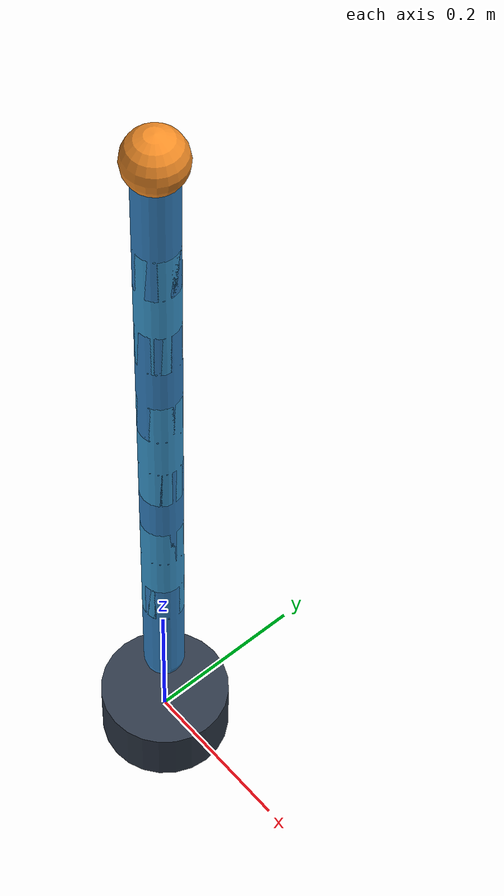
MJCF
<mujoco model="plcopen_t2b_seven_link">
  <compiler angle="radian"/>
  <option timestep="0.001" integrator="implicitfast"/>
  <default>
    <joint type="hinge" limited="true" range="-2.1 2.1" damping="1" armature="0.01"/>
    <geom type="capsule" size="0.025" density="600" rgba="0.22 0.55 0.82 1"/>
    <position kp="100" ctrllimited="true" ctrlrange="-1 1"/>
  </default>
  <worldbody>
    <body name="base">
      <geom type="cylinder" size="0.08 0.04" rgba="0.18 0.22 0.28 1"/>
      <body name="link1" pos="0 0 0.12">
        <joint name="joint1" axis="0 0 1"/>
        <geom fromto="0 0 0 0 0 0.18"/>
        <body name="link2" pos="0 0 0.12">
          <joint name="joint2" axis="0 1 0"/>
          <geom fromto="0 0 0 0 0 0.18" rgba="0.25 0.65 0.88 1"/>
          <body name="link3" pos="0 0 0.12">
            <joint name="joint3" axis="0 1 0"/>
            <geom fromto="0 0 0 0 0 0.18"/>
            <body name="link4" pos="0 0 0.12">
              <joint name="joint4" axis="1 0 0"/>
              <geom fromto="0 0 0 0 0 0.18" rgba="0.25 0.65 0.88 1"/>
              <body name="link5" pos="0 0 0.12">
                <joint name="joint5" axis="0 1 0"/>
                <geom fromto="0 0 0 0 0 0.18"/>
                <body name="link6" pos="0 0 0.12">
                  <joint name="joint6" axis="1 0 0"/>
                  <geom fromto="0 0 0 0 0 0.18" rgba="0.25 0.65 0.88 1"/>
                  <body name="link7" pos="0 0 0.12">
                    <joint name="joint7" axis="0 0 1"/>
                    <geom fromto="0 0 0 0 0 0.18"/>
                    <site name="tool" pos="0 0 0.18" size="0.035"
                          rgba="0.95 0.55 0.15 1"/>
                  </body>
                </body>
              </body>
            </body>
          </body>
        </body>
      </body>
    </body>
  </worldbody>
  <actuator>
    <position name="actuator1" joint="joint1"/>
    <position name="actuator2" joint="joint2"/>
    <position name="actuator3" joint="joint3"/>
    <position name="actuator4" joint="joint4"/>
    <position name="actuator5" joint="joint5"/>
    <position name="actuator6" joint="joint6"/>
    <position name="actuator7" joint="joint7"/>
  </actuator>
</mujoco>
